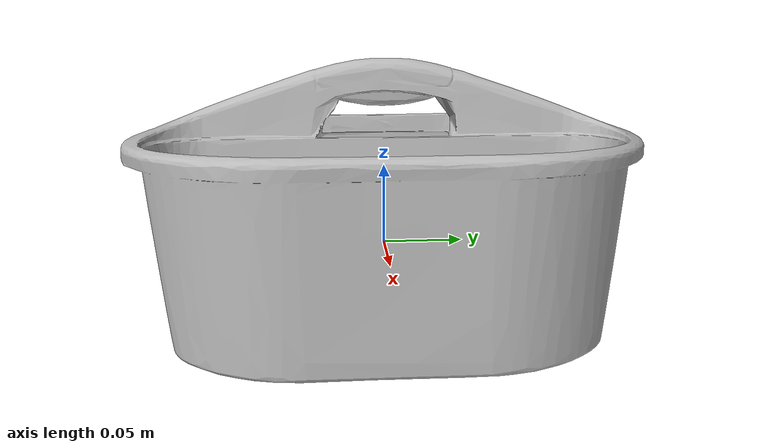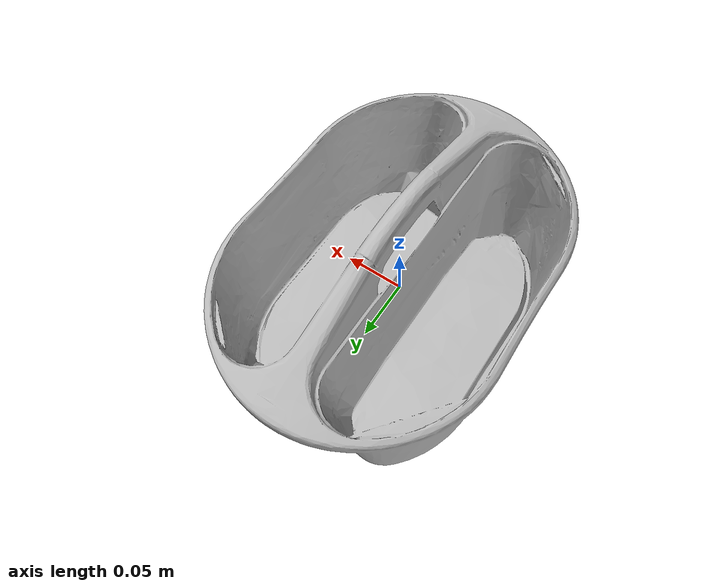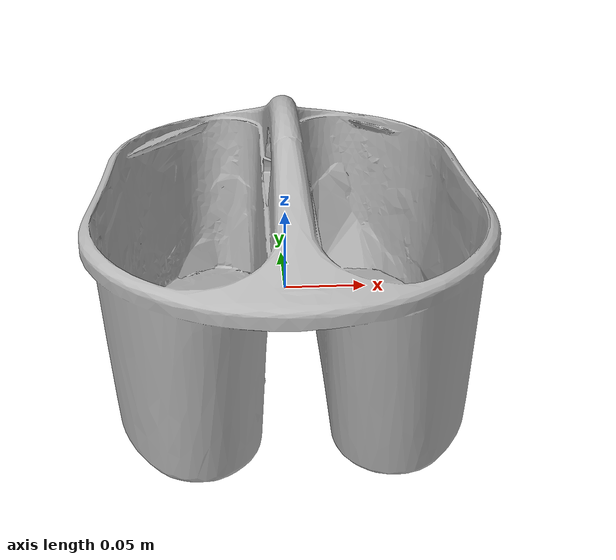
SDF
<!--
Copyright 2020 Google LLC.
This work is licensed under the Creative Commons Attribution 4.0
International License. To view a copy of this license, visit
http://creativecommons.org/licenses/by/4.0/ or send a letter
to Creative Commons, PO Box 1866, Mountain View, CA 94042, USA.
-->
<?xml version="1.0" ?>
<sdf version="1.6">
  <model name="Sterilite_Caddy_Blue_Sky_17_58_x_12_58_x_9_14">
    <link name="link_0">
      <visual name="visual">
        <geometry>
          <mesh>
            <uri>meshes/model.obj</uri>
          </mesh>
        </geometry>
      </visual>
      <collision name="collision_0">
        <geometry>
          <mesh>
            <uri>meshes/model.obj</uri>
          </mesh>
        </geometry>
      </collision>
    </link>
  </model>
</sdf>
